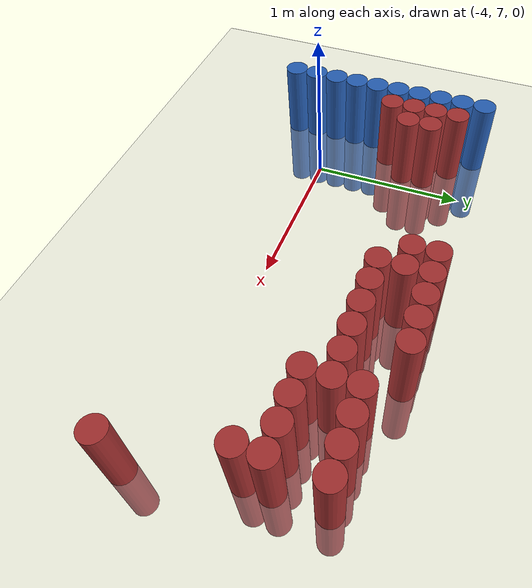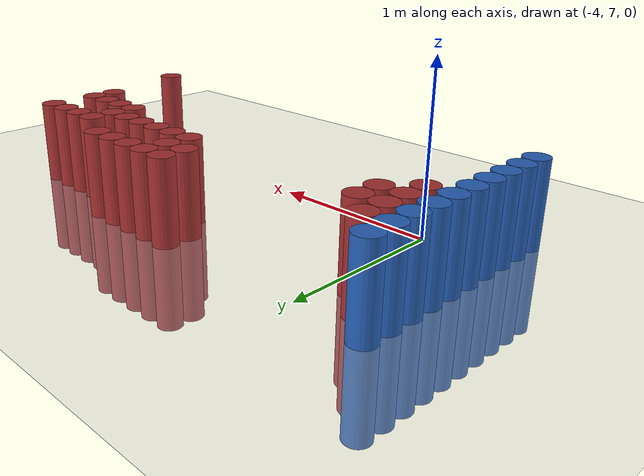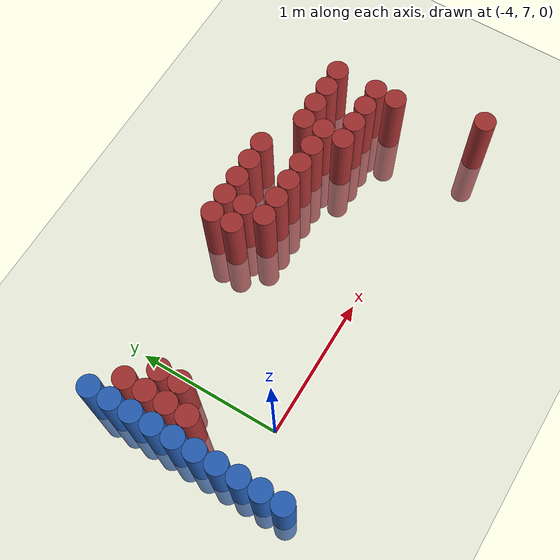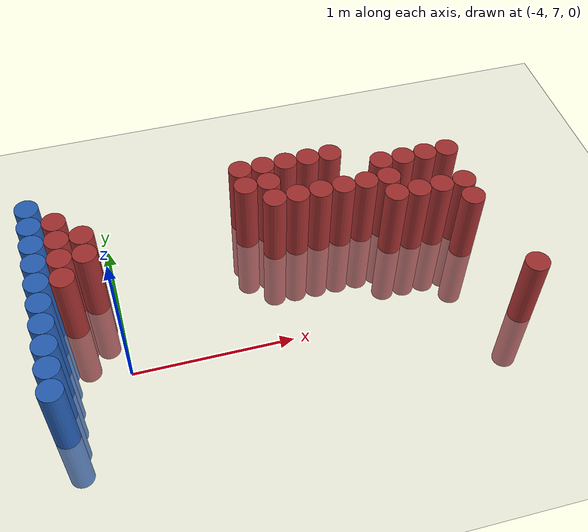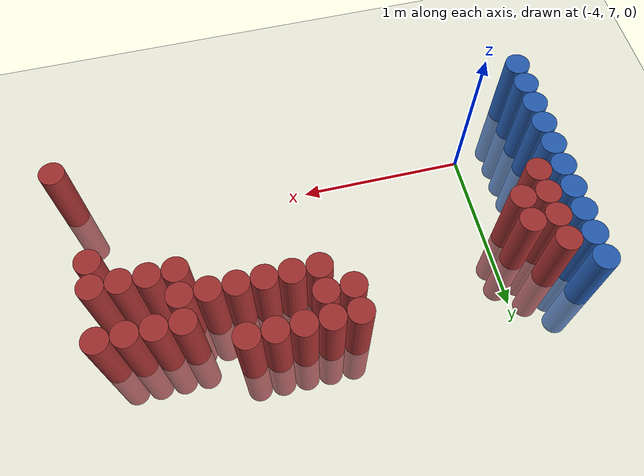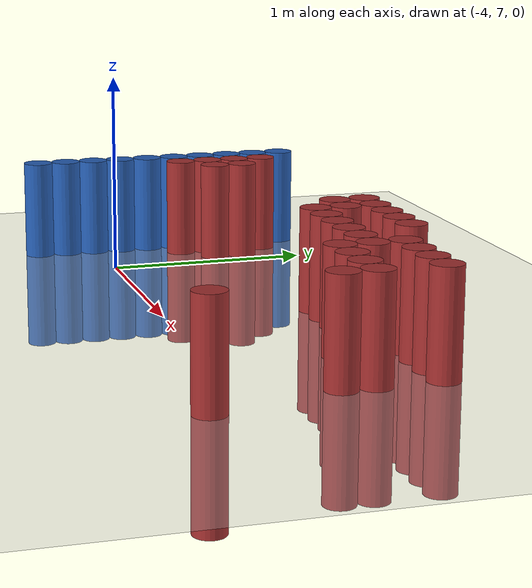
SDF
<sdf version="1.6">
 <world name="default">
  <model name="ground_plane">
   <static>1</static>
   <link name="link">
    <collision name="collision">
     <geometry><plane><normal>0 0 1</normal><size>100 100</size></plane></geometry>
     <surface><friction><ode><mu>100</mu><mu2>50</mu2></ode></friction></surface>
    </collision>
    <visual name="visual">
     <cast_shadows>0</cast_shadows>
     <geometry><plane><normal>0 0 1</normal><size>100 100</size></plane></geometry>
     <material>
      <script><uri>file://media/materials/scripts/gazebo.material</uri><name>Gazebo/Grey</name></script>
     </material>
    </visual>
   </link>
  </model>
  <model name="unit_cylinder_106">
   <static>1</static>
   <pose>-4.425000 6.675000 0.000000 0.000000 0.000000 0.000000</pose>
   <link name="link">
    <inertial>
     <mass>1</mass>
     <inertia><ixx>0.145833</ixx><ixy>0</ixy><ixz>0</ixz><iyy>0.145833</iyy><iyz>0</iyz><izz>0.125</izz></inertia>
    </inertial>
    <collision name="collision">
     <geometry><cylinder><radius>0.075000</radius><length>1</length></cylinder></geometry>
    </collision>
    <visual name="visual">
     <geometry><cylinder><radius>0.075000</radius><length>1</length></cylinder></geometry>
     <material>
      <ambient>0.152000 0.379000 0.720000 1</ambient>
      <diffuse>0.152000 0.379000 0.720000 1</diffuse>
     </material>
     <material>
      <script><name>Gazebo/Grey</name><uri>file://media/materials/scripts/gazebo.material</uri></script>
     </material>
    </visual>
    <sensor name="sensor_contact" type="contact"><contact><collision>collision</collision></contact></sensor>
   </link>
   <plugin filename="gz-sim-touchplugin-system" name="gz::sim::systems::TouchPlugin">
    <target>robot</target>
    <namespace>robot</namespace>
    <time>0.001</time>
    <enabled>true</enabled>
   </plugin>
  </model>
  <model name="unit_cylinder_107">
   <static>1</static>
   <pose>-4.425000 6.825000 0.000000 0.000000 0.000000 0.000000</pose>
   <link name="link">
    <inertial>
     <mass>1</mass>
     <inertia><ixx>0.145833</ixx><ixy>0</ixy><ixz>0</ixz><iyy>0.145833</iyy><iyz>0</iyz><izz>0.125</izz></inertia>
    </inertial>
    <collision name="collision">
     <geometry><cylinder><radius>0.075000</radius><length>1</length></cylinder></geometry>
    </collision>
    <visual name="visual">
     <geometry><cylinder><radius>0.075000</radius><length>1</length></cylinder></geometry>
     <material>
      <ambient>0.152000 0.379000 0.720000 1</ambient>
      <diffuse>0.152000 0.379000 0.720000 1</diffuse>
     </material>
     <material>
      <script><name>Gazebo/Grey</name><uri>file://media/materials/scripts/gazebo.material</uri></script>
     </material>
    </visual>
    <sensor name="sensor_contact" type="contact"><contact><collision>collision</collision></contact></sensor>
   </link>
   <plugin filename="gz-sim-touchplugin-system" name="gz::sim::systems::TouchPlugin">
    <target>robot</target>
    <namespace>robot</namespace>
    <time>0.001</time>
    <enabled>true</enabled>
   </plugin>
  </model>
  <model name="unit_cylinder_108">
   <static>1</static>
   <pose>-4.425000 6.975000 0.000000 0.000000 0.000000 0.000000</pose>
   <link name="link">
    <inertial>
     <mass>1</mass>
     <inertia><ixx>0.145833</ixx><ixy>0</ixy><ixz>0</ixz><iyy>0.145833</iyy><iyz>0</iyz><izz>0.125</izz></inertia>
    </inertial>
    <collision name="collision">
     <geometry><cylinder><radius>0.075000</radius><length>1</length></cylinder></geometry>
    </collision>
    <visual name="visual">
     <geometry><cylinder><radius>0.075000</radius><length>1</length></cylinder></geometry>
     <material>
      <ambient>0.152000 0.379000 0.720000 1</ambient>
      <diffuse>0.152000 0.379000 0.720000 1</diffuse>
     </material>
     <material>
      <script><name>Gazebo/Grey</name><uri>file://media/materials/scripts/gazebo.material</uri></script>
     </material>
    </visual>
    <sensor name="sensor_contact" type="contact"><contact><collision>collision</collision></contact></sensor>
   </link>
   <plugin filename="gz-sim-touchplugin-system" name="gz::sim::systems::TouchPlugin">
    <target>robot</target>
    <namespace>robot</namespace>
    <time>0.001</time>
    <enabled>true</enabled>
   </plugin>
  </model>
  <model name="unit_cylinder_109">
   <static>1</static>
   <pose>-4.425000 7.125000 0.000000 0.000000 0.000000 0.000000</pose>
   <link name="link">
    <inertial>
     <mass>1</mass>
     <inertia><ixx>0.145833</ixx><ixy>0</ixy><ixz>0</ixz><iyy>0.145833</iyy><iyz>0</iyz><izz>0.125</izz></inertia>
    </inertial>
    <collision name="collision">
     <geometry><cylinder><radius>0.075000</radius><length>1</length></cylinder></geometry>
    </collision>
    <visual name="visual">
     <geometry><cylinder><radius>0.075000</radius><length>1</length></cylinder></geometry>
     <material>
      <ambient>0.152000 0.379000 0.720000 1</ambient>
      <diffuse>0.152000 0.379000 0.720000 1</diffuse>
     </material>
     <material>
      <script><name>Gazebo/Grey</name><uri>file://media/materials/scripts/gazebo.material</uri></script>
     </material>
    </visual>
    <sensor name="sensor_contact" type="contact"><contact><collision>collision</collision></contact></sensor>
   </link>
   <plugin filename="gz-sim-touchplugin-system" name="gz::sim::systems::TouchPlugin">
    <target>robot</target>
    <namespace>robot</namespace>
    <time>0.001</time>
    <enabled>true</enabled>
   </plugin>
  </model>
  <model name="unit_cylinder_110">
   <static>1</static>
   <pose>-4.425000 7.275000 0.000000 0.000000 0.000000 0.000000</pose>
   <link name="link">
    <inertial>
     <mass>1</mass>
     <inertia><ixx>0.145833</ixx><ixy>0</ixy><ixz>0</ixz><iyy>0.145833</iyy><iyz>0</iyz><izz>0.125</izz></inertia>
    </inertial>
    <collision name="collision">
     <geometry><cylinder><radius>0.075000</radius><length>1</length></cylinder></geometry>
    </collision>
    <visual name="visual">
     <geometry><cylinder><radius>0.075000</radius><length>1</length></cylinder></geometry>
     <material>
      <ambient>0.152000 0.379000 0.720000 1</ambient>
      <diffuse>0.152000 0.379000 0.720000 1</diffuse>
     </material>
     <material>
      <script><name>Gazebo/Grey</name><uri>file://media/materials/scripts/gazebo.material</uri></script>
     </material>
    </visual>
    <sensor name="sensor_contact" type="contact"><contact><collision>collision</collision></contact></sensor>
   </link>
   <plugin filename="gz-sim-touchplugin-system" name="gz::sim::systems::TouchPlugin">
    <target>robot</target>
    <namespace>robot</namespace>
    <time>0.001</time>
    <enabled>true</enabled>
   </plugin>
  </model>
  <model name="unit_cylinder_111">
   <static>1</static>
   <pose>-4.425000 7.425000 0.000000 0.000000 0.000000 0.000000</pose>
   <link name="link">
    <inertial>
     <mass>1</mass>
     <inertia><ixx>0.145833</ixx><ixy>0</ixy><ixz>0</ixz><iyy>0.145833</iyy><iyz>0</iyz><izz>0.125</izz></inertia>
    </inertial>
    <collision name="collision">
     <geometry><cylinder><radius>0.075000</radius><length>1</length></cylinder></geometry>
    </collision>
    <visual name="visual">
     <geometry><cylinder><radius>0.075000</radius><length>1</length></cylinder></geometry>
     <material>
      <ambient>0.152000 0.379000 0.720000 1</ambient>
      <diffuse>0.152000 0.379000 0.720000 1</diffuse>
     </material>
     <material>
      <script><name>Gazebo/Grey</name><uri>file://media/materials/scripts/gazebo.material</uri></script>
     </material>
    </visual>
    <sensor name="sensor_contact" type="contact"><contact><collision>collision</collision></contact></sensor>
   </link>
   <plugin filename="gz-sim-touchplugin-system" name="gz::sim::systems::TouchPlugin">
    <target>robot</target>
    <namespace>robot</namespace>
    <time>0.001</time>
    <enabled>true</enabled>
   </plugin>
  </model>
  <model name="unit_cylinder_112">
   <static>1</static>
   <pose>-4.425000 7.575000 0.000000 0.000000 0.000000 0.000000</pose>
   <link name="link">
    <inertial>
     <mass>1</mass>
     <inertia><ixx>0.145833</ixx><ixy>0</ixy><ixz>0</ixz><iyy>0.145833</iyy><iyz>0</iyz><izz>0.125</izz></inertia>
    </inertial>
    <collision name="collision">
     <geometry><cylinder><radius>0.075000</radius><length>1</length></cylinder></geometry>
    </collision>
    <visual name="visual">
     <geometry><cylinder><radius>0.075000</radius><length>1</length></cylinder></geometry>
     <material>
      <ambient>0.152000 0.379000 0.720000 1</ambient>
      <diffuse>0.152000 0.379000 0.720000 1</diffuse>
     </material>
     <material>
      <script><name>Gazebo/Grey</name><uri>file://media/materials/scripts/gazebo.material</uri></script>
     </material>
    </visual>
    <sensor name="sensor_contact" type="contact"><contact><collision>collision</collision></contact></sensor>
   </link>
   <plugin filename="gz-sim-touchplugin-system" name="gz::sim::systems::TouchPlugin">
    <target>robot</target>
    <namespace>robot</namespace>
    <time>0.001</time>
    <enabled>true</enabled>
   </plugin>
  </model>
  <model name="unit_cylinder_113">
   <static>1</static>
   <pose>-4.425000 7.725000 0.000000 0.000000 0.000000 0.000000</pose>
   <link name="link">
    <inertial>
     <mass>1</mass>
     <inertia><ixx>0.145833</ixx><ixy>0</ixy><ixz>0</ixz><iyy>0.145833</iyy><iyz>0</iyz><izz>0.125</izz></inertia>
    </inertial>
    <collision name="collision">
     <geometry><cylinder><radius>0.075000</radius><length>1</length></cylinder></geometry>
    </collision>
    <visual name="visual">
     <geometry><cylinder><radius>0.075000</radius><length>1</length></cylinder></geometry>
     <material>
      <ambient>0.152000 0.379000 0.720000 1</ambient>
      <diffuse>0.152000 0.379000 0.720000 1</diffuse>
     </material>
     <material>
      <script><name>Gazebo/Grey</name><uri>file://media/materials/scripts/gazebo.material</uri></script>
     </material>
    </visual>
    <sensor name="sensor_contact" type="contact"><contact><collision>collision</collision></contact></sensor>
   </link>
   <plugin filename="gz-sim-touchplugin-system" name="gz::sim::systems::TouchPlugin">
    <target>robot</target>
    <namespace>robot</namespace>
    <time>0.001</time>
    <enabled>true</enabled>
   </plugin>
  </model>
  <model name="unit_cylinder_114">
   <static>1</static>
   <pose>-4.425000 7.875000 0.000000 0.000000 0.000000 0.000000</pose>
   <link name="link">
    <inertial>
     <mass>1</mass>
     <inertia><ixx>0.145833</ixx><ixy>0</ixy><ixz>0</ixz><iyy>0.145833</iyy><iyz>0</iyz><izz>0.125</izz></inertia>
    </inertial>
    <collision name="collision">
     <geometry><cylinder><radius>0.075000</radius><length>1</length></cylinder></geometry>
    </collision>
    <visual name="visual">
     <geometry><cylinder><radius>0.075000</radius><length>1</length></cylinder></geometry>
     <material>
      <ambient>0.152000 0.379000 0.720000 1</ambient>
      <diffuse>0.152000 0.379000 0.720000 1</diffuse>
     </material>
     <material>
      <script><name>Gazebo/Grey</name><uri>file://media/materials/scripts/gazebo.material</uri></script>
     </material>
    </visual>
    <sensor name="sensor_contact" type="contact"><contact><collision>collision</collision></contact></sensor>
   </link>
   <plugin filename="gz-sim-touchplugin-system" name="gz::sim::systems::TouchPlugin">
    <target>robot</target>
    <namespace>robot</namespace>
    <time>0.001</time>
    <enabled>true</enabled>
   </plugin>
  </model>
  <model name="unit_cylinder_115">
   <static>1</static>
   <pose>-4.425000 8.025000 0.000000 0.000000 0.000000 0.000000</pose>
   <link name="link">
    <inertial>
     <mass>1</mass>
     <inertia><ixx>0.145833</ixx><ixy>0</ixy><ixz>0</ixz><iyy>0.145833</iyy><iyz>0</iyz><izz>0.125</izz></inertia>
    </inertial>
    <collision name="collision">
     <geometry><cylinder><radius>0.075000</radius><length>1</length></cylinder></geometry>
    </collision>
    <visual name="visual">
     <geometry><cylinder><radius>0.075000</radius><length>1</length></cylinder></geometry>
     <material>
      <ambient>0.152000 0.379000 0.720000 1</ambient>
      <diffuse>0.152000 0.379000 0.720000 1</diffuse>
     </material>
     <material>
      <script><name>Gazebo/Grey</name><uri>file://media/materials/scripts/gazebo.material</uri></script>
     </material>
    </visual>
    <sensor name="sensor_contact" type="contact"><contact><collision>collision</collision></contact></sensor>
   </link>
   <plugin filename="gz-sim-touchplugin-system" name="gz::sim::systems::TouchPlugin">
    <target>robot</target>
    <namespace>robot</namespace>
    <time>0.001</time>
    <enabled>true</enabled>
   </plugin>
  </model>
  <model name="unit_cylinder_127">
   <static>1</static>
   <pose>-4.275000 7.425000 0.000000 0.000000 0.000000 0.000000</pose>
   <link name="link">
    <inertial>
     <mass>1</mass>
     <inertia><ixx>0.145833</ixx><ixy>0</ixy><ixz>0</ixz><iyy>0.145833</iyy><iyz>0</iyz><izz>0.125</izz></inertia>
    </inertial>
    <collision name="collision">
     <geometry><cylinder><radius>0.075000</radius><length>1</length></cylinder></geometry>
    </collision>
    <visual name="visual">
     <geometry><cylinder><radius>0.075000</radius><length>1</length></cylinder></geometry>
     <material>
      <ambient>0.648000 0.192000 0.192000 1</ambient>
      <diffuse>0.648000 0.192000 0.192000 1</diffuse>
     </material>
     <material>
      <script><name>Gazebo/Grey</name><uri>file://media/materials/scripts/gazebo.material</uri></script>
     </material>
    </visual>
    <sensor name="sensor_contact" type="contact"><contact><collision>collision</collision></contact></sensor>
   </link>
   <plugin filename="gz-sim-touchplugin-system" name="gz::sim::systems::TouchPlugin">
    <target>robot</target>
    <namespace>robot</namespace>
    <time>0.001</time>
    <enabled>true</enabled>
   </plugin>
  </model>
  <model name="unit_cylinder_128">
   <static>1</static>
   <pose>-4.275000 7.575000 0.000000 0.000000 0.000000 0.000000</pose>
   <link name="link">
    <inertial>
     <mass>1</mass>
     <inertia><ixx>0.145833</ixx><ixy>0</ixy><ixz>0</ixz><iyy>0.145833</iyy><iyz>0</iyz><izz>0.125</izz></inertia>
    </inertial>
    <collision name="collision">
     <geometry><cylinder><radius>0.075000</radius><length>1</length></cylinder></geometry>
    </collision>
    <visual name="visual">
     <geometry><cylinder><radius>0.075000</radius><length>1</length></cylinder></geometry>
     <material>
      <ambient>0.648000 0.192000 0.192000 1</ambient>
      <diffuse>0.648000 0.192000 0.192000 1</diffuse>
     </material>
     <material>
      <script><name>Gazebo/Grey</name><uri>file://media/materials/scripts/gazebo.material</uri></script>
     </material>
    </visual>
    <sensor name="sensor_contact" type="contact"><contact><collision>collision</collision></contact></sensor>
   </link>
   <plugin filename="gz-sim-touchplugin-system" name="gz::sim::systems::TouchPlugin">
    <target>robot</target>
    <namespace>robot</namespace>
    <time>0.001</time>
    <enabled>true</enabled>
   </plugin>
  </model>
  <model name="unit_cylinder_129">
   <static>1</static>
   <pose>-4.275000 7.725000 0.000000 0.000000 0.000000 0.000000</pose>
   <link name="link">
    <inertial>
     <mass>1</mass>
     <inertia><ixx>0.145833</ixx><ixy>0</ixy><ixz>0</ixz><iyy>0.145833</iyy><iyz>0</iyz><izz>0.125</izz></inertia>
    </inertial>
    <collision name="collision">
     <geometry><cylinder><radius>0.075000</radius><length>1</length></cylinder></geometry>
    </collision>
    <visual name="visual">
     <geometry><cylinder><radius>0.075000</radius><length>1</length></cylinder></geometry>
     <material>
      <ambient>0.648000 0.192000 0.192000 1</ambient>
      <diffuse>0.648000 0.192000 0.192000 1</diffuse>
     </material>
     <material>
      <script><name>Gazebo/Grey</name><uri>file://media/materials/scripts/gazebo.material</uri></script>
     </material>
    </visual>
    <sensor name="sensor_contact" type="contact"><contact><collision>collision</collision></contact></sensor>
   </link>
   <plugin filename="gz-sim-touchplugin-system" name="gz::sim::systems::TouchPlugin">
    <target>robot</target>
    <namespace>robot</namespace>
    <time>0.001</time>
    <enabled>true</enabled>
   </plugin>
  </model>
  <model name="unit_cylinder_130">
   <static>1</static>
   <pose>-4.275000 7.875000 0.000000 0.000000 0.000000 0.000000</pose>
   <link name="link">
    <inertial>
     <mass>1</mass>
     <inertia><ixx>0.145833</ixx><ixy>0</ixy><ixz>0</ixz><iyy>0.145833</iyy><iyz>0</iyz><izz>0.125</izz></inertia>
    </inertial>
    <collision name="collision">
     <geometry><cylinder><radius>0.075000</radius><length>1</length></cylinder></geometry>
    </collision>
    <visual name="visual">
     <geometry><cylinder><radius>0.075000</radius><length>1</length></cylinder></geometry>
     <material>
      <ambient>0.648000 0.192000 0.192000 1</ambient>
      <diffuse>0.648000 0.192000 0.192000 1</diffuse>
     </material>
     <material>
      <script><name>Gazebo/Grey</name><uri>file://media/materials/scripts/gazebo.material</uri></script>
     </material>
    </visual>
    <sensor name="sensor_contact" type="contact"><contact><collision>collision</collision></contact></sensor>
   </link>
   <plugin filename="gz-sim-touchplugin-system" name="gz::sim::systems::TouchPlugin">
    <target>robot</target>
    <namespace>robot</namespace>
    <time>0.001</time>
    <enabled>true</enabled>
   </plugin>
  </model>
  <model name="unit_cylinder_138">
   <static>1</static>
   <pose>-4.125000 7.575000 0.000000 0.000000 0.000000 0.000000</pose>
   <link name="link">
    <inertial>
     <mass>1</mass>
     <inertia><ixx>0.145833</ixx><ixy>0</ixy><ixz>0</ixz><iyy>0.145833</iyy><iyz>0</iyz><izz>0.125</izz></inertia>
    </inertial>
    <collision name="collision">
     <geometry><cylinder><radius>0.075000</radius><length>1</length></cylinder></geometry>
    </collision>
    <visual name="visual">
     <geometry><cylinder><radius>0.075000</radius><length>1</length></cylinder></geometry>
     <material>
      <ambient>0.648000 0.192000 0.192000 1</ambient>
      <diffuse>0.648000 0.192000 0.192000 1</diffuse>
     </material>
     <material>
      <script><name>Gazebo/Grey</name><uri>file://media/materials/scripts/gazebo.material</uri></script>
     </material>
    </visual>
    <sensor name="sensor_contact" type="contact"><contact><collision>collision</collision></contact></sensor>
   </link>
   <plugin filename="gz-sim-touchplugin-system" name="gz::sim::systems::TouchPlugin">
    <target>robot</target>
    <namespace>robot</namespace>
    <time>0.001</time>
    <enabled>true</enabled>
   </plugin>
  </model>
  <model name="unit_cylinder_139">
   <static>1</static>
   <pose>-4.125000 7.725000 0.000000 0.000000 0.000000 0.000000</pose>
   <link name="link">
    <inertial>
     <mass>1</mass>
     <inertia><ixx>0.145833</ixx><ixy>0</ixy><ixz>0</ixz><iyy>0.145833</iyy><iyz>0</iyz><izz>0.125</izz></inertia>
    </inertial>
    <collision name="collision">
     <geometry><cylinder><radius>0.075000</radius><length>1</length></cylinder></geometry>
    </collision>
    <visual name="visual">
     <geometry><cylinder><radius>0.075000</radius><length>1</length></cylinder></geometry>
     <material>
      <ambient>0.648000 0.192000 0.192000 1</ambient>
      <diffuse>0.648000 0.192000 0.192000 1</diffuse>
     </material>
     <material>
      <script><name>Gazebo/Grey</name><uri>file://media/materials/scripts/gazebo.material</uri></script>
     </material>
    </visual>
    <sensor name="sensor_contact" type="contact"><contact><collision>collision</collision></contact></sensor>
   </link>
   <plugin filename="gz-sim-touchplugin-system" name="gz::sim::systems::TouchPlugin">
    <target>robot</target>
    <namespace>robot</namespace>
    <time>0.001</time>
    <enabled>true</enabled>
   </plugin>
  </model>
  <model name="unit_cylinder_155">
   <static>1</static>
   <pose>-3.075000 7.875000 0.000000 0.000000 0.000000 0.000000</pose>
   <link name="link">
    <inertial>
     <mass>1</mass>
     <inertia><ixx>0.145833</ixx><ixy>0</ixy><ixz>0</ixz><iyy>0.145833</iyy><iyz>0</iyz><izz>0.125</izz></inertia>
    </inertial>
    <collision name="collision">
     <geometry><cylinder><radius>0.075000</radius><length>1</length></cylinder></geometry>
    </collision>
    <visual name="visual">
     <geometry><cylinder><radius>0.075000</radius><length>1</length></cylinder></geometry>
     <material>
      <ambient>0.648000 0.192000 0.192000 1</ambient>
      <diffuse>0.648000 0.192000 0.192000 1</diffuse>
     </material>
     <material>
      <script><name>Gazebo/Grey</name><uri>file://media/materials/scripts/gazebo.material</uri></script>
     </material>
    </visual>
    <sensor name="sensor_contact" type="contact"><contact><collision>collision</collision></contact></sensor>
   </link>
   <plugin filename="gz-sim-touchplugin-system" name="gz::sim::systems::TouchPlugin">
    <target>robot</target>
    <namespace>robot</namespace>
    <time>0.001</time>
    <enabled>true</enabled>
   </plugin>
  </model>
  <model name="unit_cylinder_156">
   <static>1</static>
   <pose>-3.075000 8.025000 0.000000 0.000000 0.000000 0.000000</pose>
   <link name="link">
    <inertial>
     <mass>1</mass>
     <inertia><ixx>0.145833</ixx><ixy>0</ixy><ixz>0</ixz><iyy>0.145833</iyy><iyz>0</iyz><izz>0.125</izz></inertia>
    </inertial>
    <collision name="collision">
     <geometry><cylinder><radius>0.075000</radius><length>1</length></cylinder></geometry>
    </collision>
    <visual name="visual">
     <geometry><cylinder><radius>0.075000</radius><length>1</length></cylinder></geometry>
     <material>
      <ambient>0.648000 0.192000 0.192000 1</ambient>
      <diffuse>0.648000 0.192000 0.192000 1</diffuse>
     </material>
     <material>
      <script><name>Gazebo/Grey</name><uri>file://media/materials/scripts/gazebo.material</uri></script>
     </material>
    </visual>
    <sensor name="sensor_contact" type="contact"><contact><collision>collision</collision></contact></sensor>
   </link>
   <plugin filename="gz-sim-touchplugin-system" name="gz::sim::systems::TouchPlugin">
    <target>robot</target>
    <namespace>robot</namespace>
    <time>0.001</time>
    <enabled>true</enabled>
   </plugin>
  </model>
  <model name="unit_cylinder_161">
   <static>1</static>
   <pose>-2.925000 7.725000 0.000000 0.000000 0.000000 0.000000</pose>
   <link name="link">
    <inertial>
     <mass>1</mass>
     <inertia><ixx>0.145833</ixx><ixy>0</ixy><ixz>0</ixz><iyy>0.145833</iyy><iyz>0</iyz><izz>0.125</izz></inertia>
    </inertial>
    <collision name="collision">
     <geometry><cylinder><radius>0.075000</radius><length>1</length></cylinder></geometry>
    </collision>
    <visual name="visual">
     <geometry><cylinder><radius>0.075000</radius><length>1</length></cylinder></geometry>
     <material>
      <ambient>0.648000 0.192000 0.192000 1</ambient>
      <diffuse>0.648000 0.192000 0.192000 1</diffuse>
     </material>
     <material>
      <script><name>Gazebo/Grey</name><uri>file://media/materials/scripts/gazebo.material</uri></script>
     </material>
    </visual>
    <sensor name="sensor_contact" type="contact"><contact><collision>collision</collision></contact></sensor>
   </link>
   <plugin filename="gz-sim-touchplugin-system" name="gz::sim::systems::TouchPlugin">
    <target>robot</target>
    <namespace>robot</namespace>
    <time>0.001</time>
    <enabled>true</enabled>
   </plugin>
  </model>
  <model name="unit_cylinder_162">
   <static>1</static>
   <pose>-2.925000 7.875000 0.000000 0.000000 0.000000 0.000000</pose>
   <link name="link">
    <inertial>
     <mass>1</mass>
     <inertia><ixx>0.145833</ixx><ixy>0</ixy><ixz>0</ixz><iyy>0.145833</iyy><iyz>0</iyz><izz>0.125</izz></inertia>
    </inertial>
    <collision name="collision">
     <geometry><cylinder><radius>0.075000</radius><length>1</length></cylinder></geometry>
    </collision>
    <visual name="visual">
     <geometry><cylinder><radius>0.075000</radius><length>1</length></cylinder></geometry>
     <material>
      <ambient>0.648000 0.192000 0.192000 1</ambient>
      <diffuse>0.648000 0.192000 0.192000 1</diffuse>
     </material>
     <material>
      <script><name>Gazebo/Grey</name><uri>file://media/materials/scripts/gazebo.material</uri></script>
     </material>
    </visual>
    <sensor name="sensor_contact" type="contact"><contact><collision>collision</collision></contact></sensor>
   </link>
   <plugin filename="gz-sim-touchplugin-system" name="gz::sim::systems::TouchPlugin">
    <target>robot</target>
    <namespace>robot</namespace>
    <time>0.001</time>
    <enabled>true</enabled>
   </plugin>
  </model>
  <model name="unit_cylinder_163">
   <static>1</static>
   <pose>-2.925000 8.025000 0.000000 0.000000 0.000000 0.000000</pose>
   <link name="link">
    <inertial>
     <mass>1</mass>
     <inertia><ixx>0.145833</ixx><ixy>0</ixy><ixz>0</ixz><iyy>0.145833</iyy><iyz>0</iyz><izz>0.125</izz></inertia>
    </inertial>
    <collision name="collision">
     <geometry><cylinder><radius>0.075000</radius><length>1</length></cylinder></geometry>
    </collision>
    <visual name="visual">
     <geometry><cylinder><radius>0.075000</radius><length>1</length></cylinder></geometry>
     <material>
      <ambient>0.648000 0.192000 0.192000 1</ambient>
      <diffuse>0.648000 0.192000 0.192000 1</diffuse>
     </material>
     <material>
      <script><name>Gazebo/Grey</name><uri>file://media/materials/scripts/gazebo.material</uri></script>
     </material>
    </visual>
    <sensor name="sensor_contact" type="contact"><contact><collision>collision</collision></contact></sensor>
   </link>
   <plugin filename="gz-sim-touchplugin-system" name="gz::sim::systems::TouchPlugin">
    <target>robot</target>
    <namespace>robot</namespace>
    <time>0.001</time>
    <enabled>true</enabled>
   </plugin>
  </model>
  <model name="unit_cylinder_167">
   <static>1</static>
   <pose>-2.775000 7.725000 0.000000 0.000000 0.000000 0.000000</pose>
   <link name="link">
    <inertial>
     <mass>1</mass>
     <inertia><ixx>0.145833</ixx><ixy>0</ixy><ixz>0</ixz><iyy>0.145833</iyy><iyz>0</iyz><izz>0.125</izz></inertia>
    </inertial>
    <collision name="collision">
     <geometry><cylinder><radius>0.075000</radius><length>1</length></cylinder></geometry>
    </collision>
    <visual name="visual">
     <geometry><cylinder><radius>0.075000</radius><length>1</length></cylinder></geometry>
     <material>
      <ambient>0.648000 0.192000 0.192000 1</ambient>
      <diffuse>0.648000 0.192000 0.192000 1</diffuse>
     </material>
     <material>
      <script><name>Gazebo/Grey</name><uri>file://media/materials/scripts/gazebo.material</uri></script>
     </material>
    </visual>
    <sensor name="sensor_contact" type="contact"><contact><collision>collision</collision></contact></sensor>
   </link>
   <plugin filename="gz-sim-touchplugin-system" name="gz::sim::systems::TouchPlugin">
    <target>robot</target>
    <namespace>robot</namespace>
    <time>0.001</time>
    <enabled>true</enabled>
   </plugin>
  </model>
  <model name="unit_cylinder_168">
   <static>1</static>
   <pose>-2.775000 8.025000 0.000000 0.000000 0.000000 0.000000</pose>
   <link name="link">
    <inertial>
     <mass>1</mass>
     <inertia><ixx>0.145833</ixx><ixy>0</ixy><ixz>0</ixz><iyy>0.145833</iyy><iyz>0</iyz><izz>0.125</izz></inertia>
    </inertial>
    <collision name="collision">
     <geometry><cylinder><radius>0.075000</radius><length>1</length></cylinder></geometry>
    </collision>
    <visual name="visual">
     <geometry><cylinder><radius>0.075000</radius><length>1</length></cylinder></geometry>
     <material>
      <ambient>0.648000 0.192000 0.192000 1</ambient>
      <diffuse>0.648000 0.192000 0.192000 1</diffuse>
     </material>
     <material>
      <script><name>Gazebo/Grey</name><uri>file://media/materials/scripts/gazebo.material</uri></script>
     </material>
    </visual>
    <sensor name="sensor_contact" type="contact"><contact><collision>collision</collision></contact></sensor>
   </link>
   <plugin filename="gz-sim-touchplugin-system" name="gz::sim::systems::TouchPlugin">
    <target>robot</target>
    <namespace>robot</namespace>
    <time>0.001</time>
    <enabled>true</enabled>
   </plugin>
  </model>
  <model name="unit_cylinder_171">
   <static>1</static>
   <pose>-2.625000 7.725000 0.000000 0.000000 0.000000 0.000000</pose>
   <link name="link">
    <inertial>
     <mass>1</mass>
     <inertia><ixx>0.145833</ixx><ixy>0</ixy><ixz>0</ixz><iyy>0.145833</iyy><iyz>0</iyz><izz>0.125</izz></inertia>
    </inertial>
    <collision name="collision">
     <geometry><cylinder><radius>0.075000</radius><length>1</length></cylinder></geometry>
    </collision>
    <visual name="visual">
     <geometry><cylinder><radius>0.075000</radius><length>1</length></cylinder></geometry>
     <material>
      <ambient>0.648000 0.192000 0.192000 1</ambient>
      <diffuse>0.648000 0.192000 0.192000 1</diffuse>
     </material>
     <material>
      <script><name>Gazebo/Grey</name><uri>file://media/materials/scripts/gazebo.material</uri></script>
     </material>
    </visual>
    <sensor name="sensor_contact" type="contact"><contact><collision>collision</collision></contact></sensor>
   </link>
   <plugin filename="gz-sim-touchplugin-system" name="gz::sim::systems::TouchPlugin">
    <target>robot</target>
    <namespace>robot</namespace>
    <time>0.001</time>
    <enabled>true</enabled>
   </plugin>
  </model>
  <model name="unit_cylinder_172">
   <static>1</static>
   <pose>-2.625000 8.025000 0.000000 0.000000 0.000000 0.000000</pose>
   <link name="link">
    <inertial>
     <mass>1</mass>
     <inertia><ixx>0.145833</ixx><ixy>0</ixy><ixz>0</ixz><iyy>0.145833</iyy><iyz>0</iyz><izz>0.125</izz></inertia>
    </inertial>
    <collision name="collision">
     <geometry><cylinder><radius>0.075000</radius><length>1</length></cylinder></geometry>
    </collision>
    <visual name="visual">
     <geometry><cylinder><radius>0.075000</radius><length>1</length></cylinder></geometry>
     <material>
      <ambient>0.648000 0.192000 0.192000 1</ambient>
      <diffuse>0.648000 0.192000 0.192000 1</diffuse>
     </material>
     <material>
      <script><name>Gazebo/Grey</name><uri>file://media/materials/scripts/gazebo.material</uri></script>
     </material>
    </visual>
    <sensor name="sensor_contact" type="contact"><contact><collision>collision</collision></contact></sensor>
   </link>
   <plugin filename="gz-sim-touchplugin-system" name="gz::sim::systems::TouchPlugin">
    <target>robot</target>
    <namespace>robot</namespace>
    <time>0.001</time>
    <enabled>true</enabled>
   </plugin>
  </model>
  <model name="unit_cylinder_176">
   <static>1</static>
   <pose>-2.475000 7.725000 0.000000 0.000000 0.000000 0.000000</pose>
   <link name="link">
    <inertial>
     <mass>1</mass>
     <inertia><ixx>0.145833</ixx><ixy>0</ixy><ixz>0</ixz><iyy>0.145833</iyy><iyz>0</iyz><izz>0.125</izz></inertia>
    </inertial>
    <collision name="collision">
     <geometry><cylinder><radius>0.075000</radius><length>1</length></cylinder></geometry>
    </collision>
    <visual name="visual">
     <geometry><cylinder><radius>0.075000</radius><length>1</length></cylinder></geometry>
     <material>
      <ambient>0.648000 0.192000 0.192000 1</ambient>
      <diffuse>0.648000 0.192000 0.192000 1</diffuse>
     </material>
     <material>
      <script><name>Gazebo/Grey</name><uri>file://media/materials/scripts/gazebo.material</uri></script>
     </material>
    </visual>
    <sensor name="sensor_contact" type="contact"><contact><collision>collision</collision></contact></sensor>
   </link>
   <plugin filename="gz-sim-touchplugin-system" name="gz::sim::systems::TouchPlugin">
    <target>robot</target>
    <namespace>robot</namespace>
    <time>0.001</time>
    <enabled>true</enabled>
   </plugin>
  </model>
  <model name="unit_cylinder_177">
   <static>1</static>
   <pose>-2.475000 8.025000 0.000000 0.000000 0.000000 0.000000</pose>
   <link name="link">
    <inertial>
     <mass>1</mass>
     <inertia><ixx>0.145833</ixx><ixy>0</ixy><ixz>0</ixz><iyy>0.145833</iyy><iyz>0</iyz><izz>0.125</izz></inertia>
    </inertial>
    <collision name="collision">
     <geometry><cylinder><radius>0.075000</radius><length>1</length></cylinder></geometry>
    </collision>
    <visual name="visual">
     <geometry><cylinder><radius>0.075000</radius><length>1</length></cylinder></geometry>
     <material>
      <ambient>0.648000 0.192000 0.192000 1</ambient>
      <diffuse>0.648000 0.192000 0.192000 1</diffuse>
     </material>
     <material>
      <script><name>Gazebo/Grey</name><uri>file://media/materials/scripts/gazebo.material</uri></script>
     </material>
    </visual>
    <sensor name="sensor_contact" type="contact"><contact><collision>collision</collision></contact></sensor>
   </link>
   <plugin filename="gz-sim-touchplugin-system" name="gz::sim::systems::TouchPlugin">
    <target>robot</target>
    <namespace>robot</namespace>
    <time>0.001</time>
    <enabled>true</enabled>
   </plugin>
  </model>
  <model name="unit_cylinder_181">
   <static>1</static>
   <pose>-2.325000 7.725000 0.000000 0.000000 0.000000 0.000000</pose>
   <link name="link">
    <inertial>
     <mass>1</mass>
     <inertia><ixx>0.145833</ixx><ixy>0</ixy><ixz>0</ixz><iyy>0.145833</iyy><iyz>0</iyz><izz>0.125</izz></inertia>
    </inertial>
    <collision name="collision">
     <geometry><cylinder><radius>0.075000</radius><length>1</length></cylinder></geometry>
    </collision>
    <visual name="visual">
     <geometry><cylinder><radius>0.075000</radius><length>1</length></cylinder></geometry>
     <material>
      <ambient>0.648000 0.192000 0.192000 1</ambient>
      <diffuse>0.648000 0.192000 0.192000 1</diffuse>
     </material>
     <material>
      <script><name>Gazebo/Grey</name><uri>file://media/materials/scripts/gazebo.material</uri></script>
     </material>
    </visual>
    <sensor name="sensor_contact" type="contact"><contact><collision>collision</collision></contact></sensor>
   </link>
   <plugin filename="gz-sim-touchplugin-system" name="gz::sim::systems::TouchPlugin">
    <target>robot</target>
    <namespace>robot</namespace>
    <time>0.001</time>
    <enabled>true</enabled>
   </plugin>
  </model>
  <model name="unit_cylinder_183">
   <static>1</static>
   <pose>-2.175000 7.575000 0.000000 0.000000 0.000000 0.000000</pose>
   <link name="link">
    <inertial>
     <mass>1</mass>
     <inertia><ixx>0.145833</ixx><ixy>0</ixy><ixz>0</ixz><iyy>0.145833</iyy><iyz>0</iyz><izz>0.125</izz></inertia>
    </inertial>
    <collision name="collision">
     <geometry><cylinder><radius>0.075000</radius><length>1</length></cylinder></geometry>
    </collision>
    <visual name="visual">
     <geometry><cylinder><radius>0.075000</radius><length>1</length></cylinder></geometry>
     <material>
      <ambient>0.648000 0.192000 0.192000 1</ambient>
      <diffuse>0.648000 0.192000 0.192000 1</diffuse>
     </material>
     <material>
      <script><name>Gazebo/Grey</name><uri>file://media/materials/scripts/gazebo.material</uri></script>
     </material>
    </visual>
    <sensor name="sensor_contact" type="contact"><contact><collision>collision</collision></contact></sensor>
   </link>
   <plugin filename="gz-sim-touchplugin-system" name="gz::sim::systems::TouchPlugin">
    <target>robot</target>
    <namespace>robot</namespace>
    <time>0.001</time>
    <enabled>true</enabled>
   </plugin>
  </model>
  <model name="unit_cylinder_184">
   <static>1</static>
   <pose>-2.175000 7.725000 0.000000 0.000000 0.000000 0.000000</pose>
   <link name="link">
    <inertial>
     <mass>1</mass>
     <inertia><ixx>0.145833</ixx><ixy>0</ixy><ixz>0</ixz><iyy>0.145833</iyy><iyz>0</iyz><izz>0.125</izz></inertia>
    </inertial>
    <collision name="collision">
     <geometry><cylinder><radius>0.075000</radius><length>1</length></cylinder></geometry>
    </collision>
    <visual name="visual">
     <geometry><cylinder><radius>0.075000</radius><length>1</length></cylinder></geometry>
     <material>
      <ambient>0.648000 0.192000 0.192000 1</ambient>
      <diffuse>0.648000 0.192000 0.192000 1</diffuse>
     </material>
     <material>
      <script><name>Gazebo/Grey</name><uri>file://media/materials/scripts/gazebo.material</uri></script>
     </material>
    </visual>
    <sensor name="sensor_contact" type="contact"><contact><collision>collision</collision></contact></sensor>
   </link>
   <plugin filename="gz-sim-touchplugin-system" name="gz::sim::systems::TouchPlugin">
    <target>robot</target>
    <namespace>robot</namespace>
    <time>0.001</time>
    <enabled>true</enabled>
   </plugin>
  </model>
  <model name="unit_cylinder_185">
   <static>1</static>
   <pose>-2.175000 7.875000 0.000000 0.000000 0.000000 0.000000</pose>
   <link name="link">
    <inertial>
     <mass>1</mass>
     <inertia><ixx>0.145833</ixx><ixy>0</ixy><ixz>0</ixz><iyy>0.145833</iyy><iyz>0</iyz><izz>0.125</izz></inertia>
    </inertial>
    <collision name="collision">
     <geometry><cylinder><radius>0.075000</radius><length>1</length></cylinder></geometry>
    </collision>
    <visual name="visual">
     <geometry><cylinder><radius>0.075000</radius><length>1</length></cylinder></geometry>
     <material>
      <ambient>0.648000 0.192000 0.192000 1</ambient>
      <diffuse>0.648000 0.192000 0.192000 1</diffuse>
     </material>
     <material>
      <script><name>Gazebo/Grey</name><uri>file://media/materials/scripts/gazebo.material</uri></script>
     </material>
    </visual>
    <sensor name="sensor_contact" type="contact"><contact><collision>collision</collision></contact></sensor>
   </link>
   <plugin filename="gz-sim-touchplugin-system" name="gz::sim::systems::TouchPlugin">
    <target>robot</target>
    <namespace>robot</namespace>
    <time>0.001</time>
    <enabled>true</enabled>
   </plugin>
  </model>
  <model name="unit_cylinder_190">
   <static>1</static>
   <pose>-2.025000 7.575000 0.000000 0.000000 0.000000 0.000000</pose>
   <link name="link">
    <inertial>
     <mass>1</mass>
     <inertia><ixx>0.145833</ixx><ixy>0</ixy><ixz>0</ixz><iyy>0.145833</iyy><iyz>0</iyz><izz>0.125</izz></inertia>
    </inertial>
    <collision name="collision">
     <geometry><cylinder><radius>0.075000</radius><length>1</length></cylinder></geometry>
    </collision>
    <visual name="visual">
     <geometry><cylinder><radius>0.075000</radius><length>1</length></cylinder></geometry>
     <material>
      <ambient>0.648000 0.192000 0.192000 1</ambient>
      <diffuse>0.648000 0.192000 0.192000 1</diffuse>
     </material>
     <material>
      <script><name>Gazebo/Grey</name><uri>file://media/materials/scripts/gazebo.material</uri></script>
     </material>
    </visual>
    <sensor name="sensor_contact" type="contact"><contact><collision>collision</collision></contact></sensor>
   </link>
   <plugin filename="gz-sim-touchplugin-system" name="gz::sim::systems::TouchPlugin">
    <target>robot</target>
    <namespace>robot</namespace>
    <time>0.001</time>
    <enabled>true</enabled>
   </plugin>
  </model>
  <model name="unit_cylinder_191">
   <static>1</static>
   <pose>-2.025000 7.875000 0.000000 0.000000 0.000000 0.000000</pose>
   <link name="link">
    <inertial>
     <mass>1</mass>
     <inertia><ixx>0.145833</ixx><ixy>0</ixy><ixz>0</ixz><iyy>0.145833</iyy><iyz>0</iyz><izz>0.125</izz></inertia>
    </inertial>
    <collision name="collision">
     <geometry><cylinder><radius>0.075000</radius><length>1</length></cylinder></geometry>
    </collision>
    <visual name="visual">
     <geometry><cylinder><radius>0.075000</radius><length>1</length></cylinder></geometry>
     <material>
      <ambient>0.648000 0.192000 0.192000 1</ambient>
      <diffuse>0.648000 0.192000 0.192000 1</diffuse>
     </material>
     <material>
      <script><name>Gazebo/Grey</name><uri>file://media/materials/scripts/gazebo.material</uri></script>
     </material>
    </visual>
    <sensor name="sensor_contact" type="contact"><contact><collision>collision</collision></contact></sensor>
   </link>
   <plugin filename="gz-sim-touchplugin-system" name="gz::sim::systems::TouchPlugin">
    <target>robot</target>
    <namespace>robot</namespace>
    <time>0.001</time>
    <enabled>true</enabled>
   </plugin>
  </model>
  <model name="unit_cylinder_197">
   <static>1</static>
   <pose>-1.875000 7.575000 0.000000 0.000000 0.000000 0.000000</pose>
   <link name="link">
    <inertial>
     <mass>1</mass>
     <inertia><ixx>0.145833</ixx><ixy>0</ixy><ixz>0</ixz><iyy>0.145833</iyy><iyz>0</iyz><izz>0.125</izz></inertia>
    </inertial>
    <collision name="collision">
     <geometry><cylinder><radius>0.075000</radius><length>1</length></cylinder></geometry>
    </collision>
    <visual name="visual">
     <geometry><cylinder><radius>0.075000</radius><length>1</length></cylinder></geometry>
     <material>
      <ambient>0.648000 0.192000 0.192000 1</ambient>
      <diffuse>0.648000 0.192000 0.192000 1</diffuse>
     </material>
     <material>
      <script><name>Gazebo/Grey</name><uri>file://media/materials/scripts/gazebo.material</uri></script>
     </material>
    </visual>
    <sensor name="sensor_contact" type="contact"><contact><collision>collision</collision></contact></sensor>
   </link>
   <plugin filename="gz-sim-touchplugin-system" name="gz::sim::systems::TouchPlugin">
    <target>robot</target>
    <namespace>robot</namespace>
    <time>0.001</time>
    <enabled>true</enabled>
   </plugin>
  </model>
  <model name="unit_cylinder_198">
   <static>1</static>
   <pose>-1.875000 7.875000 0.000000 0.000000 0.000000 0.000000</pose>
   <link name="link">
    <inertial>
     <mass>1</mass>
     <inertia><ixx>0.145833</ixx><ixy>0</ixy><ixz>0</ixz><iyy>0.145833</iyy><iyz>0</iyz><izz>0.125</izz></inertia>
    </inertial>
    <collision name="collision">
     <geometry><cylinder><radius>0.075000</radius><length>1</length></cylinder></geometry>
    </collision>
    <visual name="visual">
     <geometry><cylinder><radius>0.075000</radius><length>1</length></cylinder></geometry>
     <material>
      <ambient>0.648000 0.192000 0.192000 1</ambient>
      <diffuse>0.648000 0.192000 0.192000 1</diffuse>
     </material>
     <material>
      <script><name>Gazebo/Grey</name><uri>file://media/materials/scripts/gazebo.material</uri></script>
     </material>
    </visual>
    <sensor name="sensor_contact" type="contact"><contact><collision>collision</collision></contact></sensor>
   </link>
   <plugin filename="gz-sim-touchplugin-system" name="gz::sim::systems::TouchPlugin">
    <target>robot</target>
    <namespace>robot</namespace>
    <time>0.001</time>
    <enabled>true</enabled>
   </plugin>
  </model>
  <model name="unit_cylinder_204">
   <static>1</static>
   <pose>-1.725000 7.425000 0.000000 0.000000 0.000000 0.000000</pose>
   <link name="link">
    <inertial>
     <mass>1</mass>
     <inertia><ixx>0.145833</ixx><ixy>0</ixy><ixz>0</ixz><iyy>0.145833</iyy><iyz>0</iyz><izz>0.125</izz></inertia>
    </inertial>
    <collision name="collision">
     <geometry><cylinder><radius>0.075000</radius><length>1</length></cylinder></geometry>
    </collision>
    <visual name="visual">
     <geometry><cylinder><radius>0.075000</radius><length>1</length></cylinder></geometry>
     <material>
      <ambient>0.648000 0.192000 0.192000 1</ambient>
      <diffuse>0.648000 0.192000 0.192000 1</diffuse>
     </material>
     <material>
      <script><name>Gazebo/Grey</name><uri>file://media/materials/scripts/gazebo.material</uri></script>
     </material>
    </visual>
    <sensor name="sensor_contact" type="contact"><contact><collision>collision</collision></contact></sensor>
   </link>
   <plugin filename="gz-sim-touchplugin-system" name="gz::sim::systems::TouchPlugin">
    <target>robot</target>
    <namespace>robot</namespace>
    <time>0.001</time>
    <enabled>true</enabled>
   </plugin>
  </model>
  <model name="unit_cylinder_205">
   <static>1</static>
   <pose>-1.725000 7.575000 0.000000 0.000000 0.000000 0.000000</pose>
   <link name="link">
    <inertial>
     <mass>1</mass>
     <inertia><ixx>0.145833</ixx><ixy>0</ixy><ixz>0</ixz><iyy>0.145833</iyy><iyz>0</iyz><izz>0.125</izz></inertia>
    </inertial>
    <collision name="collision">
     <geometry><cylinder><radius>0.075000</radius><length>1</length></cylinder></geometry>
    </collision>
    <visual name="visual">
     <geometry><cylinder><radius>0.075000</radius><length>1</length></cylinder></geometry>
     <material>
      <ambient>0.648000 0.192000 0.192000 1</ambient>
      <diffuse>0.648000 0.192000 0.192000 1</diffuse>
     </material>
     <material>
      <script><name>Gazebo/Grey</name><uri>file://media/materials/scripts/gazebo.material</uri></script>
     </material>
    </visual>
    <sensor name="sensor_contact" type="contact"><contact><collision>collision</collision></contact></sensor>
   </link>
   <plugin filename="gz-sim-touchplugin-system" name="gz::sim::systems::TouchPlugin">
    <target>robot</target>
    <namespace>robot</namespace>
    <time>0.001</time>
    <enabled>true</enabled>
   </plugin>
  </model>
  <model name="unit_cylinder_206">
   <static>1</static>
   <pose>-1.725000 7.875000 0.000000 0.000000 0.000000 0.000000</pose>
   <link name="link">
    <inertial>
     <mass>1</mass>
     <inertia><ixx>0.145833</ixx><ixy>0</ixy><ixz>0</ixz><iyy>0.145833</iyy><iyz>0</iyz><izz>0.125</izz></inertia>
    </inertial>
    <collision name="collision">
     <geometry><cylinder><radius>0.075000</radius><length>1</length></cylinder></geometry>
    </collision>
    <visual name="visual">
     <geometry><cylinder><radius>0.075000</radius><length>1</length></cylinder></geometry>
     <material>
      <ambient>0.648000 0.192000 0.192000 1</ambient>
      <diffuse>0.648000 0.192000 0.192000 1</diffuse>
     </material>
     <material>
      <script><name>Gazebo/Grey</name><uri>file://media/materials/scripts/gazebo.material</uri></script>
     </material>
    </visual>
    <sensor name="sensor_contact" type="contact"><contact><collision>collision</collision></contact></sensor>
   </link>
   <plugin filename="gz-sim-touchplugin-system" name="gz::sim::systems::TouchPlugin">
    <target>robot</target>
    <namespace>robot</namespace>
    <time>0.001</time>
    <enabled>true</enabled>
   </plugin>
  </model>
  <model name="unit_cylinder_209">
   <static>1</static>
   <pose>-1.575000 6.825000 0.000000 0.000000 0.000000 0.000000</pose>
   <link name="link">
    <inertial>
     <mass>1</mass>
     <inertia><ixx>0.145833</ixx><ixy>0</ixy><ixz>0</ixz><iyy>0.145833</iyy><iyz>0</iyz><izz>0.125</izz></inertia>
    </inertial>
    <collision name="collision">
     <geometry><cylinder><radius>0.075000</radius><length>1</length></cylinder></geometry>
    </collision>
    <visual name="visual">
     <geometry><cylinder><radius>0.075000</radius><length>1</length></cylinder></geometry>
     <material>
      <ambient>0.648000 0.192000 0.192000 1</ambient>
      <diffuse>0.648000 0.192000 0.192000 1</diffuse>
     </material>
     <material>
      <script><name>Gazebo/Grey</name><uri>file://media/materials/scripts/gazebo.material</uri></script>
     </material>
    </visual>
    <sensor name="sensor_contact" type="contact"><contact><collision>collision</collision></contact></sensor>
   </link>
   <plugin filename="gz-sim-touchplugin-system" name="gz::sim::systems::TouchPlugin">
    <target>robot</target>
    <namespace>robot</namespace>
    <time>0.001</time>
    <enabled>true</enabled>
   </plugin>
  </model>
 </world>
</sdf>
